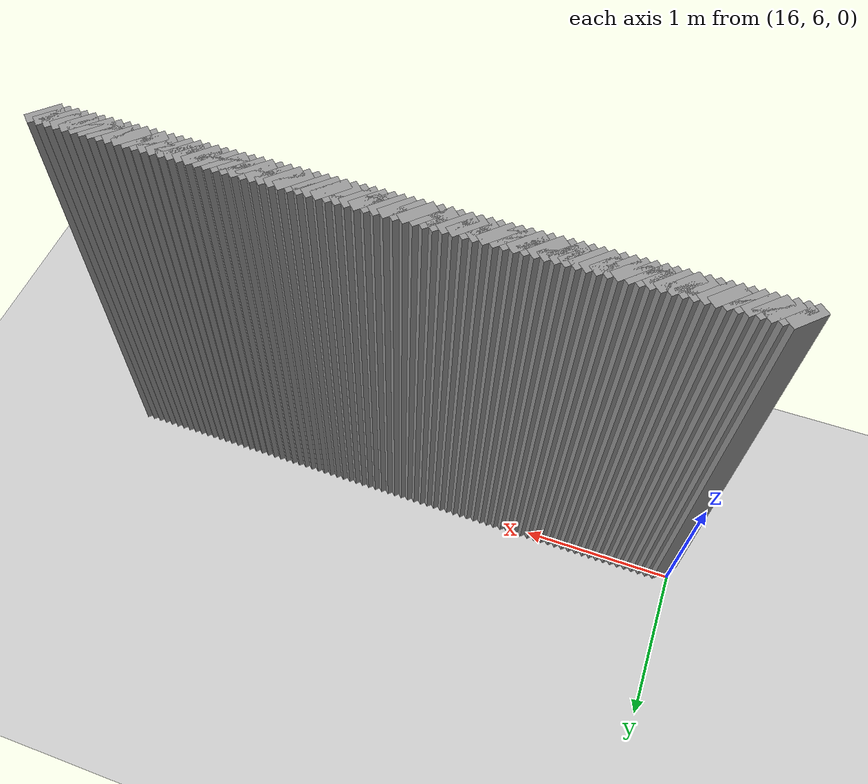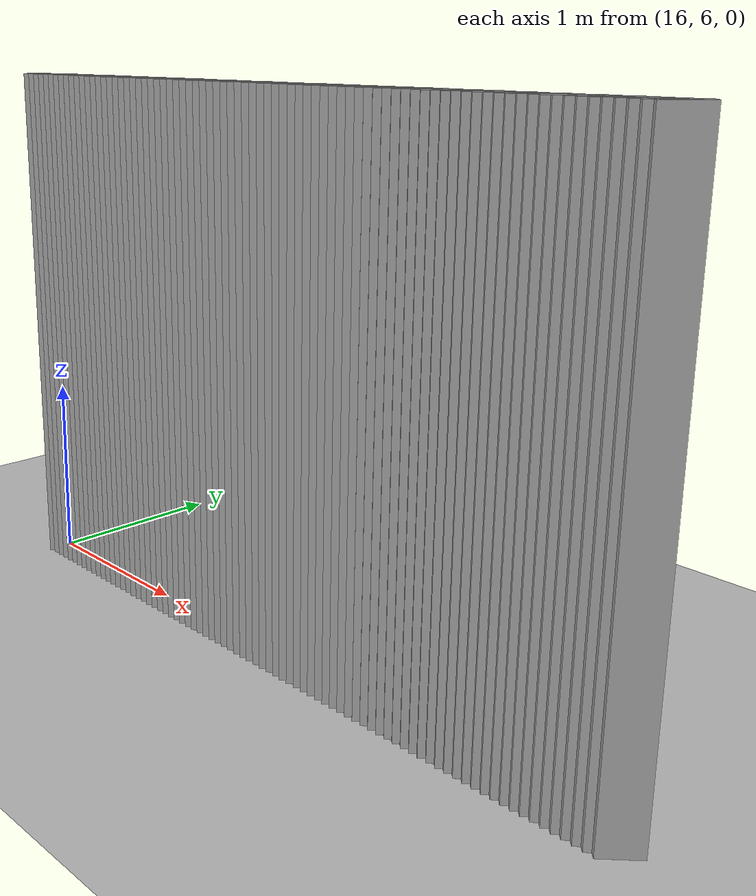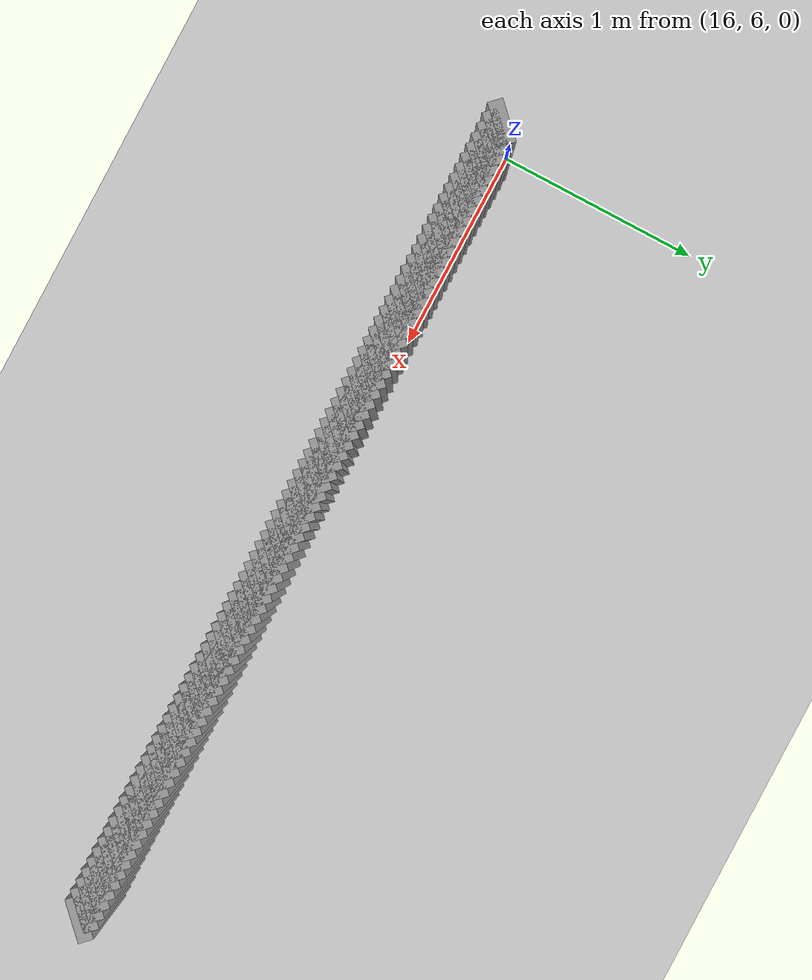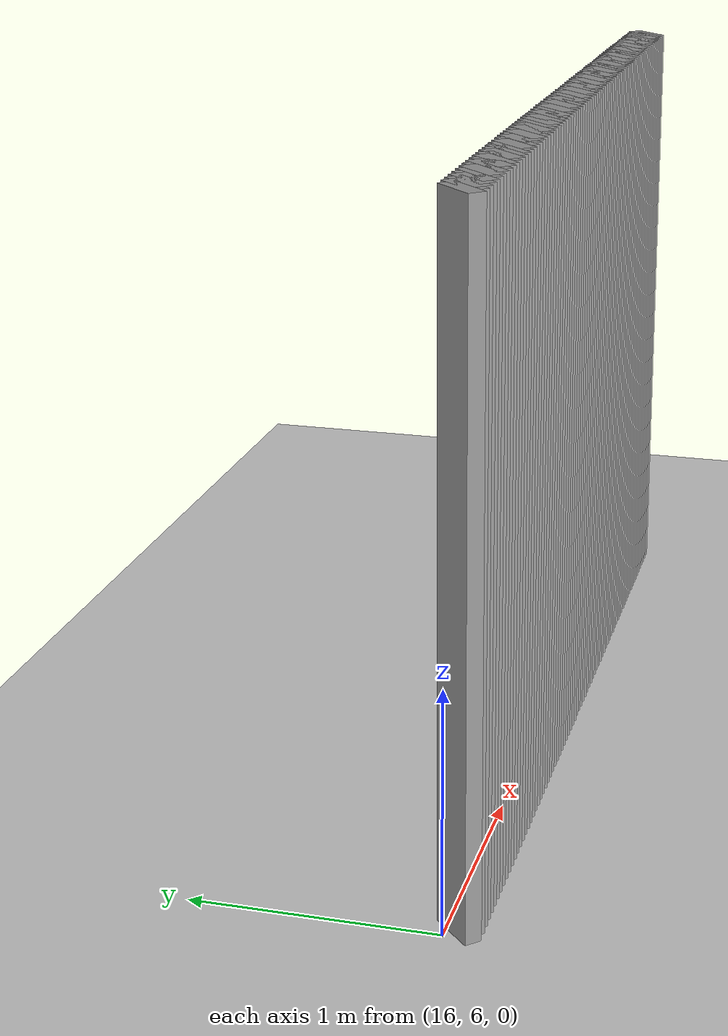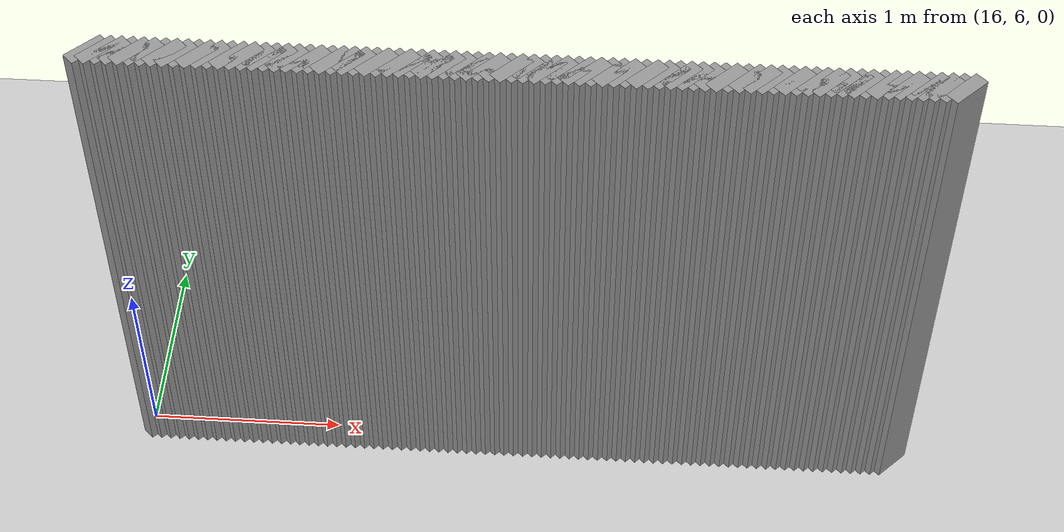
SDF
<sdf version="1.5">
 <world name="default">
  <include><uri>model://ground_plane</uri></include>
  <include><uri>model://sun</uri></include>
  <model name="grey_wall_4648">
   <static>1</static>
   <link name="link">
    <pose>16.05 5.95  1.4 0 0 -0.785398163397</pose>
    <collision name="collision"><geometry><box><size>0.0707106781187 .2  2.8</size></box></geometry></collision>
    <visual name="visual">
     <cast_shadows>0</cast_shadows>
     <geometry><box><size>0.0707106781187 .2  2.8</size></box></geometry>
     <material>
      <script>
       <uri>model://grey_wall/materials/scripts</uri>
       <uri>model://grey_wall/materials/textures</uri>
       <name>vrc/grey_wall</name>
      </script>
     </material>
    </visual>
   </link>
  </model>
  <model name="grey_wall_4649">
   <static>1</static>
   <link name="link">
    <pose>16.1 5.95  1.4 0 0 -0.785398163397</pose>
    <collision name="collision"><geometry><box><size>0.0707106781187 .2  2.8</size></box></geometry></collision>
    <visual name="visual">
     <cast_shadows>0</cast_shadows>
     <geometry><box><size>0.0707106781187 .2  2.8</size></box></geometry>
     <material>
      <script>
       <uri>model://grey_wall/materials/scripts</uri>
       <uri>model://grey_wall/materials/textures</uri>
       <name>vrc/grey_wall</name>
      </script>
     </material>
    </visual>
   </link>
  </model>
  <model name="grey_wall_4650">
   <static>1</static>
   <link name="link">
    <pose>16.15 5.95  1.4 0 0 -0.785398163397</pose>
    <collision name="collision"><geometry><box><size>0.0707106781187 .2  2.8</size></box></geometry></collision>
    <visual name="visual">
     <cast_shadows>0</cast_shadows>
     <geometry><box><size>0.0707106781187 .2  2.8</size></box></geometry>
     <material>
      <script>
       <uri>model://grey_wall/materials/scripts</uri>
       <uri>model://grey_wall/materials/textures</uri>
       <name>vrc/grey_wall</name>
      </script>
     </material>
    </visual>
   </link>
  </model>
  <model name="grey_wall_4651">
   <static>1</static>
   <link name="link">
    <pose>16.2 5.95  1.4 0 0 -0.785398163397</pose>
    <collision name="collision"><geometry><box><size>0.0707106781187 .2  2.8</size></box></geometry></collision>
    <visual name="visual">
     <cast_shadows>0</cast_shadows>
     <geometry><box><size>0.0707106781187 .2  2.8</size></box></geometry>
     <material>
      <script>
       <uri>model://grey_wall/materials/scripts</uri>
       <uri>model://grey_wall/materials/textures</uri>
       <name>vrc/grey_wall</name>
      </script>
     </material>
    </visual>
   </link>
  </model>
  <model name="grey_wall_4652">
   <static>1</static>
   <link name="link">
    <pose>16.25 5.95  1.4 0 0 -0.785398163397</pose>
    <collision name="collision"><geometry><box><size>0.0707106781187 .2  2.8</size></box></geometry></collision>
    <visual name="visual">
     <cast_shadows>0</cast_shadows>
     <geometry><box><size>0.0707106781187 .2  2.8</size></box></geometry>
     <material>
      <script>
       <uri>model://grey_wall/materials/scripts</uri>
       <uri>model://grey_wall/materials/textures</uri>
       <name>vrc/grey_wall</name>
      </script>
     </material>
    </visual>
   </link>
  </model>
  <model name="grey_wall_4653">
   <static>1</static>
   <link name="link">
    <pose>16.3 5.95  1.4 0 0 -0.785398163397</pose>
    <collision name="collision"><geometry><box><size>0.0707106781187 .2  2.8</size></box></geometry></collision>
    <visual name="visual">
     <cast_shadows>0</cast_shadows>
     <geometry><box><size>0.0707106781187 .2  2.8</size></box></geometry>
     <material>
      <script>
       <uri>model://grey_wall/materials/scripts</uri>
       <uri>model://grey_wall/materials/textures</uri>
       <name>vrc/grey_wall</name>
      </script>
     </material>
    </visual>
   </link>
  </model>
  <model name="grey_wall_4654">
   <static>1</static>
   <link name="link">
    <pose>16.35 5.95  1.4 0 0 -0.785398163397</pose>
    <collision name="collision"><geometry><box><size>0.0707106781187 .2  2.8</size></box></geometry></collision>
    <visual name="visual">
     <cast_shadows>0</cast_shadows>
     <geometry><box><size>0.0707106781187 .2  2.8</size></box></geometry>
     <material>
      <script>
       <uri>model://grey_wall/materials/scripts</uri>
       <uri>model://grey_wall/materials/textures</uri>
       <name>vrc/grey_wall</name>
      </script>
     </material>
    </visual>
   </link>
  </model>
  <model name="grey_wall_4655">
   <static>1</static>
   <link name="link">
    <pose>16.4 5.95  1.4 0 0 -0.785398163397</pose>
    <collision name="collision"><geometry><box><size>0.0707106781187 .2  2.8</size></box></geometry></collision>
    <visual name="visual">
     <cast_shadows>0</cast_shadows>
     <geometry><box><size>0.0707106781187 .2  2.8</size></box></geometry>
     <material>
      <script>
       <uri>model://grey_wall/materials/scripts</uri>
       <uri>model://grey_wall/materials/textures</uri>
       <name>vrc/grey_wall</name>
      </script>
     </material>
    </visual>
   </link>
  </model>
  <model name="grey_wall_4656">
   <static>1</static>
   <link name="link">
    <pose>16.45 5.95  1.4 0 0 -0.785398163397</pose>
    <collision name="collision"><geometry><box><size>0.0707106781187 .2  2.8</size></box></geometry></collision>
    <visual name="visual">
     <cast_shadows>0</cast_shadows>
     <geometry><box><size>0.0707106781187 .2  2.8</size></box></geometry>
     <material>
      <script>
       <uri>model://grey_wall/materials/scripts</uri>
       <uri>model://grey_wall/materials/textures</uri>
       <name>vrc/grey_wall</name>
      </script>
     </material>
    </visual>
   </link>
  </model>
  <model name="grey_wall_4657">
   <static>1</static>
   <link name="link">
    <pose>16.5 5.95  1.4 0 0 -0.785398163397</pose>
    <collision name="collision"><geometry><box><size>0.0707106781187 .2  2.8</size></box></geometry></collision>
    <visual name="visual">
     <cast_shadows>0</cast_shadows>
     <geometry><box><size>0.0707106781187 .2  2.8</size></box></geometry>
     <material>
      <script>
       <uri>model://grey_wall/materials/scripts</uri>
       <uri>model://grey_wall/materials/textures</uri>
       <name>vrc/grey_wall</name>
      </script>
     </material>
    </visual>
   </link>
  </model>
  <model name="grey_wall_4658">
   <static>1</static>
   <link name="link">
    <pose>16.55 5.95  1.4 0 0 -0.785398163397</pose>
    <collision name="collision"><geometry><box><size>0.0707106781187 .2  2.8</size></box></geometry></collision>
    <visual name="visual">
     <cast_shadows>0</cast_shadows>
     <geometry><box><size>0.0707106781187 .2  2.8</size></box></geometry>
     <material>
      <script>
       <uri>model://grey_wall/materials/scripts</uri>
       <uri>model://grey_wall/materials/textures</uri>
       <name>vrc/grey_wall</name>
      </script>
     </material>
    </visual>
   </link>
  </model>
  <model name="grey_wall_4659">
   <static>1</static>
   <link name="link">
    <pose>16.6 5.95  1.4 0 0 -0.785398163397</pose>
    <collision name="collision"><geometry><box><size>0.0707106781187 .2  2.8</size></box></geometry></collision>
    <visual name="visual">
     <cast_shadows>0</cast_shadows>
     <geometry><box><size>0.0707106781187 .2  2.8</size></box></geometry>
     <material>
      <script>
       <uri>model://grey_wall/materials/scripts</uri>
       <uri>model://grey_wall/materials/textures</uri>
       <name>vrc/grey_wall</name>
      </script>
     </material>
    </visual>
   </link>
  </model>
  <model name="grey_wall_4660">
   <static>1</static>
   <link name="link">
    <pose>16.65 5.95  1.4 0 0 -0.785398163397</pose>
    <collision name="collision"><geometry><box><size>0.0707106781187 .2  2.8</size></box></geometry></collision>
    <visual name="visual">
     <cast_shadows>0</cast_shadows>
     <geometry><box><size>0.0707106781187 .2  2.8</size></box></geometry>
     <material>
      <script>
       <uri>model://grey_wall/materials/scripts</uri>
       <uri>model://grey_wall/materials/textures</uri>
       <name>vrc/grey_wall</name>
      </script>
     </material>
    </visual>
   </link>
  </model>
  <model name="grey_wall_4661">
   <static>1</static>
   <link name="link">
    <pose>16.7 5.95  1.4 0 0 -0.785398163397</pose>
    <collision name="collision"><geometry><box><size>0.0707106781187 .2  2.8</size></box></geometry></collision>
    <visual name="visual">
     <cast_shadows>0</cast_shadows>
     <geometry><box><size>0.0707106781187 .2  2.8</size></box></geometry>
     <material>
      <script>
       <uri>model://grey_wall/materials/scripts</uri>
       <uri>model://grey_wall/materials/textures</uri>
       <name>vrc/grey_wall</name>
      </script>
     </material>
    </visual>
   </link>
  </model>
  <model name="grey_wall_4662">
   <static>1</static>
   <link name="link">
    <pose>16.75 5.95  1.4 0 0 -0.785398163397</pose>
    <collision name="collision"><geometry><box><size>0.0707106781187 .2  2.8</size></box></geometry></collision>
    <visual name="visual">
     <cast_shadows>0</cast_shadows>
     <geometry><box><size>0.0707106781187 .2  2.8</size></box></geometry>
     <material>
      <script>
       <uri>model://grey_wall/materials/scripts</uri>
       <uri>model://grey_wall/materials/textures</uri>
       <name>vrc/grey_wall</name>
      </script>
     </material>
    </visual>
   </link>
  </model>
  <model name="grey_wall_4663">
   <static>1</static>
   <link name="link">
    <pose>16.8 5.95  1.4 0 0 -0.785398163397</pose>
    <collision name="collision"><geometry><box><size>0.0707106781187 .2  2.8</size></box></geometry></collision>
    <visual name="visual">
     <cast_shadows>0</cast_shadows>
     <geometry><box><size>0.0707106781187 .2  2.8</size></box></geometry>
     <material>
      <script>
       <uri>model://grey_wall/materials/scripts</uri>
       <uri>model://grey_wall/materials/textures</uri>
       <name>vrc/grey_wall</name>
      </script>
     </material>
    </visual>
   </link>
  </model>
  <model name="grey_wall_4664">
   <static>1</static>
   <link name="link">
    <pose>16.85 5.95  1.4 0 0 -0.785398163397</pose>
    <collision name="collision"><geometry><box><size>0.0707106781187 .2  2.8</size></box></geometry></collision>
    <visual name="visual">
     <cast_shadows>0</cast_shadows>
     <geometry><box><size>0.0707106781187 .2  2.8</size></box></geometry>
     <material>
      <script>
       <uri>model://grey_wall/materials/scripts</uri>
       <uri>model://grey_wall/materials/textures</uri>
       <name>vrc/grey_wall</name>
      </script>
     </material>
    </visual>
   </link>
  </model>
  <model name="grey_wall_4665">
   <static>1</static>
   <link name="link">
    <pose>16.9 5.95  1.4 0 0 -0.785398163397</pose>
    <collision name="collision"><geometry><box><size>0.0707106781187 .2  2.8</size></box></geometry></collision>
    <visual name="visual">
     <cast_shadows>0</cast_shadows>
     <geometry><box><size>0.0707106781187 .2  2.8</size></box></geometry>
     <material>
      <script>
       <uri>model://grey_wall/materials/scripts</uri>
       <uri>model://grey_wall/materials/textures</uri>
       <name>vrc/grey_wall</name>
      </script>
     </material>
    </visual>
   </link>
  </model>
  <model name="grey_wall_4666">
   <static>1</static>
   <link name="link">
    <pose>16.95 5.95  1.4 0 0 -0.785398163397</pose>
    <collision name="collision"><geometry><box><size>0.0707106781187 .2  2.8</size></box></geometry></collision>
    <visual name="visual">
     <cast_shadows>0</cast_shadows>
     <geometry><box><size>0.0707106781187 .2  2.8</size></box></geometry>
     <material>
      <script>
       <uri>model://grey_wall/materials/scripts</uri>
       <uri>model://grey_wall/materials/textures</uri>
       <name>vrc/grey_wall</name>
      </script>
     </material>
    </visual>
   </link>
  </model>
  <model name="grey_wall_4667">
   <static>1</static>
   <link name="link">
    <pose>17.0 5.95  1.4 0 0 -0.785398163397</pose>
    <collision name="collision"><geometry><box><size>0.0707106781187 .2  2.8</size></box></geometry></collision>
    <visual name="visual">
     <cast_shadows>0</cast_shadows>
     <geometry><box><size>0.0707106781187 .2  2.8</size></box></geometry>
     <material>
      <script>
       <uri>model://grey_wall/materials/scripts</uri>
       <uri>model://grey_wall/materials/textures</uri>
       <name>vrc/grey_wall</name>
      </script>
     </material>
    </visual>
   </link>
  </model>
  <model name="grey_wall_4668">
   <static>1</static>
   <link name="link">
    <pose>17.05 5.95  1.4 0 0 -0.785398163397</pose>
    <collision name="collision"><geometry><box><size>0.0707106781187 .2  2.8</size></box></geometry></collision>
    <visual name="visual">
     <cast_shadows>0</cast_shadows>
     <geometry><box><size>0.0707106781187 .2  2.8</size></box></geometry>
     <material>
      <script>
       <uri>model://grey_wall/materials/scripts</uri>
       <uri>model://grey_wall/materials/textures</uri>
       <name>vrc/grey_wall</name>
      </script>
     </material>
    </visual>
   </link>
  </model>
  <model name="grey_wall_4669">
   <static>1</static>
   <link name="link">
    <pose>17.1 5.95  1.4 0 0 -0.785398163397</pose>
    <collision name="collision"><geometry><box><size>0.0707106781187 .2  2.8</size></box></geometry></collision>
    <visual name="visual">
     <cast_shadows>0</cast_shadows>
     <geometry><box><size>0.0707106781187 .2  2.8</size></box></geometry>
     <material>
      <script>
       <uri>model://grey_wall/materials/scripts</uri>
       <uri>model://grey_wall/materials/textures</uri>
       <name>vrc/grey_wall</name>
      </script>
     </material>
    </visual>
   </link>
  </model>
  <model name="grey_wall_4670">
   <static>1</static>
   <link name="link">
    <pose>17.15 5.95  1.4 0 0 -0.785398163397</pose>
    <collision name="collision"><geometry><box><size>0.0707106781187 .2  2.8</size></box></geometry></collision>
    <visual name="visual">
     <cast_shadows>0</cast_shadows>
     <geometry><box><size>0.0707106781187 .2  2.8</size></box></geometry>
     <material>
      <script>
       <uri>model://grey_wall/materials/scripts</uri>
       <uri>model://grey_wall/materials/textures</uri>
       <name>vrc/grey_wall</name>
      </script>
     </material>
    </visual>
   </link>
  </model>
  <model name="grey_wall_4671">
   <static>1</static>
   <link name="link">
    <pose>17.2 5.95  1.4 0 0 -0.785398163397</pose>
    <collision name="collision"><geometry><box><size>0.0707106781187 .2  2.8</size></box></geometry></collision>
    <visual name="visual">
     <cast_shadows>0</cast_shadows>
     <geometry><box><size>0.0707106781187 .2  2.8</size></box></geometry>
     <material>
      <script>
       <uri>model://grey_wall/materials/scripts</uri>
       <uri>model://grey_wall/materials/textures</uri>
       <name>vrc/grey_wall</name>
      </script>
     </material>
    </visual>
   </link>
  </model>
  <model name="grey_wall_4672">
   <static>1</static>
   <link name="link">
    <pose>17.25 5.95  1.4 0 0 -0.785398163397</pose>
    <collision name="collision"><geometry><box><size>0.0707106781187 .2  2.8</size></box></geometry></collision>
    <visual name="visual">
     <cast_shadows>0</cast_shadows>
     <geometry><box><size>0.0707106781187 .2  2.8</size></box></geometry>
     <material>
      <script>
       <uri>model://grey_wall/materials/scripts</uri>
       <uri>model://grey_wall/materials/textures</uri>
       <name>vrc/grey_wall</name>
      </script>
     </material>
    </visual>
   </link>
  </model>
  <model name="grey_wall_4673">
   <static>1</static>
   <link name="link">
    <pose>17.3 5.95  1.4 0 0 -0.785398163397</pose>
    <collision name="collision"><geometry><box><size>0.0707106781187 .2  2.8</size></box></geometry></collision>
    <visual name="visual">
     <cast_shadows>0</cast_shadows>
     <geometry><box><size>0.0707106781187 .2  2.8</size></box></geometry>
     <material>
      <script>
       <uri>model://grey_wall/materials/scripts</uri>
       <uri>model://grey_wall/materials/textures</uri>
       <name>vrc/grey_wall</name>
      </script>
     </material>
    </visual>
   </link>
  </model>
  <model name="grey_wall_4674">
   <static>1</static>
   <link name="link">
    <pose>17.35 5.95  1.4 0 0 -0.785398163397</pose>
    <collision name="collision"><geometry><box><size>0.0707106781187 .2  2.8</size></box></geometry></collision>
    <visual name="visual">
     <cast_shadows>0</cast_shadows>
     <geometry><box><size>0.0707106781187 .2  2.8</size></box></geometry>
     <material>
      <script>
       <uri>model://grey_wall/materials/scripts</uri>
       <uri>model://grey_wall/materials/textures</uri>
       <name>vrc/grey_wall</name>
      </script>
     </material>
    </visual>
   </link>
  </model>
  <model name="grey_wall_4675">
   <static>1</static>
   <link name="link">
    <pose>17.4 5.95  1.4 0 0 -0.785398163397</pose>
    <collision name="collision"><geometry><box><size>0.0707106781187 .2  2.8</size></box></geometry></collision>
    <visual name="visual">
     <cast_shadows>0</cast_shadows>
     <geometry><box><size>0.0707106781187 .2  2.8</size></box></geometry>
     <material>
      <script>
       <uri>model://grey_wall/materials/scripts</uri>
       <uri>model://grey_wall/materials/textures</uri>
       <name>vrc/grey_wall</name>
      </script>
     </material>
    </visual>
   </link>
  </model>
  <model name="grey_wall_4676">
   <static>1</static>
   <link name="link">
    <pose>17.45 5.95  1.4 0 0 -0.785398163397</pose>
    <collision name="collision"><geometry><box><size>0.0707106781187 .2  2.8</size></box></geometry></collision>
    <visual name="visual">
     <cast_shadows>0</cast_shadows>
     <geometry><box><size>0.0707106781187 .2  2.8</size></box></geometry>
     <material>
      <script>
       <uri>model://grey_wall/materials/scripts</uri>
       <uri>model://grey_wall/materials/textures</uri>
       <name>vrc/grey_wall</name>
      </script>
     </material>
    </visual>
   </link>
  </model>
  <model name="grey_wall_4677">
   <static>1</static>
   <link name="link">
    <pose>17.5 5.95  1.4 0 0 -0.785398163397</pose>
    <collision name="collision"><geometry><box><size>0.0707106781187 .2  2.8</size></box></geometry></collision>
    <visual name="visual">
     <cast_shadows>0</cast_shadows>
     <geometry><box><size>0.0707106781187 .2  2.8</size></box></geometry>
     <material>
      <script>
       <uri>model://grey_wall/materials/scripts</uri>
       <uri>model://grey_wall/materials/textures</uri>
       <name>vrc/grey_wall</name>
      </script>
     </material>
    </visual>
   </link>
  </model>
  <model name="grey_wall_4678">
   <static>1</static>
   <link name="link">
    <pose>17.55 5.95  1.4 0 0 -0.785398163397</pose>
    <collision name="collision"><geometry><box><size>0.0707106781187 .2  2.8</size></box></geometry></collision>
    <visual name="visual">
     <cast_shadows>0</cast_shadows>
     <geometry><box><size>0.0707106781187 .2  2.8</size></box></geometry>
     <material>
      <script>
       <uri>model://grey_wall/materials/scripts</uri>
       <uri>model://grey_wall/materials/textures</uri>
       <name>vrc/grey_wall</name>
      </script>
     </material>
    </visual>
   </link>
  </model>
  <model name="grey_wall_4679">
   <static>1</static>
   <link name="link">
    <pose>17.6 5.95  1.4 0 0 -0.785398163397</pose>
    <collision name="collision"><geometry><box><size>0.0707106781187 .2  2.8</size></box></geometry></collision>
    <visual name="visual">
     <cast_shadows>0</cast_shadows>
     <geometry><box><size>0.0707106781187 .2  2.8</size></box></geometry>
     <material>
      <script>
       <uri>model://grey_wall/materials/scripts</uri>
       <uri>model://grey_wall/materials/textures</uri>
       <name>vrc/grey_wall</name>
      </script>
     </material>
    </visual>
   </link>
  </model>
  <model name="grey_wall_4680">
   <static>1</static>
   <link name="link">
    <pose>17.65 5.95  1.4 0 0 -0.785398163397</pose>
    <collision name="collision"><geometry><box><size>0.0707106781187 .2  2.8</size></box></geometry></collision>
    <visual name="visual">
     <cast_shadows>0</cast_shadows>
     <geometry><box><size>0.0707106781187 .2  2.8</size></box></geometry>
     <material>
      <script>
       <uri>model://grey_wall/materials/scripts</uri>
       <uri>model://grey_wall/materials/textures</uri>
       <name>vrc/grey_wall</name>
      </script>
     </material>
    </visual>
   </link>
  </model>
  <model name="grey_wall_4681">
   <static>1</static>
   <link name="link">
    <pose>17.7 5.95  1.4 0 0 -0.785398163397</pose>
    <collision name="collision"><geometry><box><size>0.0707106781187 .2  2.8</size></box></geometry></collision>
    <visual name="visual">
     <cast_shadows>0</cast_shadows>
     <geometry><box><size>0.0707106781187 .2  2.8</size></box></geometry>
     <material>
      <script>
       <uri>model://grey_wall/materials/scripts</uri>
       <uri>model://grey_wall/materials/textures</uri>
       <name>vrc/grey_wall</name>
      </script>
     </material>
    </visual>
   </link>
  </model>
  <model name="grey_wall_4682">
   <static>1</static>
   <link name="link">
    <pose>17.75 5.95  1.4 0 0 -0.785398163397</pose>
    <collision name="collision"><geometry><box><size>0.0707106781187 .2  2.8</size></box></geometry></collision>
    <visual name="visual">
     <cast_shadows>0</cast_shadows>
     <geometry><box><size>0.0707106781187 .2  2.8</size></box></geometry>
     <material>
      <script>
       <uri>model://grey_wall/materials/scripts</uri>
       <uri>model://grey_wall/materials/textures</uri>
       <name>vrc/grey_wall</name>
      </script>
     </material>
    </visual>
   </link>
  </model>
  <model name="grey_wall_4683">
   <static>1</static>
   <link name="link">
    <pose>17.8 5.95  1.4 0 0 -0.785398163397</pose>
    <collision name="collision"><geometry><box><size>0.0707106781187 .2  2.8</size></box></geometry></collision>
    <visual name="visual">
     <cast_shadows>0</cast_shadows>
     <geometry><box><size>0.0707106781187 .2  2.8</size></box></geometry>
     <material>
      <script>
       <uri>model://grey_wall/materials/scripts</uri>
       <uri>model://grey_wall/materials/textures</uri>
       <name>vrc/grey_wall</name>
      </script>
     </material>
    </visual>
   </link>
  </model>
  <model name="grey_wall_4684">
   <static>1</static>
   <link name="link">
    <pose>17.85 5.95  1.4 0 0 -0.785398163397</pose>
    <collision name="collision"><geometry><box><size>0.0707106781187 .2  2.8</size></box></geometry></collision>
    <visual name="visual">
     <cast_shadows>0</cast_shadows>
     <geometry><box><size>0.0707106781187 .2  2.8</size></box></geometry>
     <material>
      <script>
       <uri>model://grey_wall/materials/scripts</uri>
       <uri>model://grey_wall/materials/textures</uri>
       <name>vrc/grey_wall</name>
      </script>
     </material>
    </visual>
   </link>
  </model>
  <model name="grey_wall_4685">
   <static>1</static>
   <link name="link">
    <pose>17.9 5.95  1.4 0 0 -0.785398163397</pose>
    <collision name="collision"><geometry><box><size>0.0707106781187 .2  2.8</size></box></geometry></collision>
    <visual name="visual">
     <cast_shadows>0</cast_shadows>
     <geometry><box><size>0.0707106781187 .2  2.8</size></box></geometry>
     <material>
      <script>
       <uri>model://grey_wall/materials/scripts</uri>
       <uri>model://grey_wall/materials/textures</uri>
       <name>vrc/grey_wall</name>
      </script>
     </material>
    </visual>
   </link>
  </model>
  <model name="grey_wall_4686">
   <static>1</static>
   <link name="link">
    <pose>17.95 5.95  1.4 0 0 -0.785398163397</pose>
    <collision name="collision"><geometry><box><size>0.0707106781187 .2  2.8</size></box></geometry></collision>
    <visual name="visual">
     <cast_shadows>0</cast_shadows>
     <geometry><box><size>0.0707106781187 .2  2.8</size></box></geometry>
     <material>
      <script>
       <uri>model://grey_wall/materials/scripts</uri>
       <uri>model://grey_wall/materials/textures</uri>
       <name>vrc/grey_wall</name>
      </script>
     </material>
    </visual>
   </link>
  </model>
  <model name="grey_wall_4687">
   <static>1</static>
   <link name="link">
    <pose>18.0 5.95  1.4 0 0 -0.785398163397</pose>
    <collision name="collision"><geometry><box><size>0.0707106781187 .2  2.8</size></box></geometry></collision>
    <visual name="visual">
     <cast_shadows>0</cast_shadows>
     <geometry><box><size>0.0707106781187 .2  2.8</size></box></geometry>
     <material>
      <script>
       <uri>model://grey_wall/materials/scripts</uri>
       <uri>model://grey_wall/materials/textures</uri>
       <name>vrc/grey_wall</name>
      </script>
     </material>
    </visual>
   </link>
  </model>
  <model name="grey_wall_4688">
   <static>1</static>
   <link name="link">
    <pose>18.05 5.95  1.4 0 0 -0.785398163397</pose>
    <collision name="collision"><geometry><box><size>0.0707106781187 .2  2.8</size></box></geometry></collision>
    <visual name="visual">
     <cast_shadows>0</cast_shadows>
     <geometry><box><size>0.0707106781187 .2  2.8</size></box></geometry>
     <material>
      <script>
       <uri>model://grey_wall/materials/scripts</uri>
       <uri>model://grey_wall/materials/textures</uri>
       <name>vrc/grey_wall</name>
      </script>
     </material>
    </visual>
   </link>
  </model>
  <model name="grey_wall_4689">
   <static>1</static>
   <link name="link">
    <pose>18.1 5.95  1.4 0 0 -0.785398163397</pose>
    <collision name="collision"><geometry><box><size>0.0707106781187 .2  2.8</size></box></geometry></collision>
    <visual name="visual">
     <cast_shadows>0</cast_shadows>
     <geometry><box><size>0.0707106781187 .2  2.8</size></box></geometry>
     <material>
      <script>
       <uri>model://grey_wall/materials/scripts</uri>
       <uri>model://grey_wall/materials/textures</uri>
       <name>vrc/grey_wall</name>
      </script>
     </material>
    </visual>
   </link>
  </model>
  <model name="grey_wall_4690">
   <static>1</static>
   <link name="link">
    <pose>18.15 5.95  1.4 0 0 -0.785398163397</pose>
    <collision name="collision"><geometry><box><size>0.0707106781187 .2  2.8</size></box></geometry></collision>
    <visual name="visual">
     <cast_shadows>0</cast_shadows>
     <geometry><box><size>0.0707106781187 .2  2.8</size></box></geometry>
     <material>
      <script>
       <uri>model://grey_wall/materials/scripts</uri>
       <uri>model://grey_wall/materials/textures</uri>
       <name>vrc/grey_wall</name>
      </script>
     </material>
    </visual>
   </link>
  </model>
  <model name="grey_wall_4691">
   <static>1</static>
   <link name="link">
    <pose>18.2 5.95  1.4 0 0 -0.785398163397</pose>
    <collision name="collision"><geometry><box><size>0.0707106781187 .2  2.8</size></box></geometry></collision>
    <visual name="visual">
     <cast_shadows>0</cast_shadows>
     <geometry><box><size>0.0707106781187 .2  2.8</size></box></geometry>
     <material>
      <script>
       <uri>model://grey_wall/materials/scripts</uri>
       <uri>model://grey_wall/materials/textures</uri>
       <name>vrc/grey_wall</name>
      </script>
     </material>
    </visual>
   </link>
  </model>
  <model name="grey_wall_4692">
   <static>1</static>
   <link name="link">
    <pose>18.25 5.95  1.4 0 0 -0.785398163397</pose>
    <collision name="collision"><geometry><box><size>0.0707106781187 .2  2.8</size></box></geometry></collision>
    <visual name="visual">
     <cast_shadows>0</cast_shadows>
     <geometry><box><size>0.0707106781187 .2  2.8</size></box></geometry>
     <material>
      <script>
       <uri>model://grey_wall/materials/scripts</uri>
       <uri>model://grey_wall/materials/textures</uri>
       <name>vrc/grey_wall</name>
      </script>
     </material>
    </visual>
   </link>
  </model>
  <model name="grey_wall_4693">
   <static>1</static>
   <link name="link">
    <pose>18.3 5.95  1.4 0 0 -0.785398163397</pose>
    <collision name="collision"><geometry><box><size>0.0707106781187 .2  2.8</size></box></geometry></collision>
    <visual name="visual">
     <cast_shadows>0</cast_shadows>
     <geometry><box><size>0.0707106781187 .2  2.8</size></box></geometry>
     <material>
      <script>
       <uri>model://grey_wall/materials/scripts</uri>
       <uri>model://grey_wall/materials/textures</uri>
       <name>vrc/grey_wall</name>
      </script>
     </material>
    </visual>
   </link>
  </model>
  <model name="grey_wall_4694">
   <static>1</static>
   <link name="link">
    <pose>18.35 5.95  1.4 0 0 -0.785398163397</pose>
    <collision name="collision"><geometry><box><size>0.0707106781187 .2  2.8</size></box></geometry></collision>
    <visual name="visual">
     <cast_shadows>0</cast_shadows>
     <geometry><box><size>0.0707106781187 .2  2.8</size></box></geometry>
     <material>
      <script>
       <uri>model://grey_wall/materials/scripts</uri>
       <uri>model://grey_wall/materials/textures</uri>
       <name>vrc/grey_wall</name>
      </script>
     </material>
    </visual>
   </link>
  </model>
  <model name="grey_wall_4695">
   <static>1</static>
   <link name="link">
    <pose>18.4 5.95  1.4 0 0 -0.785398163397</pose>
    <collision name="collision"><geometry><box><size>0.0707106781187 .2  2.8</size></box></geometry></collision>
    <visual name="visual">
     <cast_shadows>0</cast_shadows>
     <geometry><box><size>0.0707106781187 .2  2.8</size></box></geometry>
     <material>
      <script>
       <uri>model://grey_wall/materials/scripts</uri>
       <uri>model://grey_wall/materials/textures</uri>
       <name>vrc/grey_wall</name>
      </script>
     </material>
    </visual>
   </link>
  </model>
  <model name="grey_wall_4696">
   <static>1</static>
   <link name="link">
    <pose>18.45 5.95  1.4 0 0 -0.785398163397</pose>
    <collision name="collision"><geometry><box><size>0.0707106781187 .2  2.8</size></box></geometry></collision>
    <visual name="visual">
     <cast_shadows>0</cast_shadows>
     <geometry><box><size>0.0707106781187 .2  2.8</size></box></geometry>
     <material>
      <script>
       <uri>model://grey_wall/materials/scripts</uri>
       <uri>model://grey_wall/materials/textures</uri>
       <name>vrc/grey_wall</name>
      </script>
     </material>
    </visual>
   </link>
  </model>
  <model name="grey_wall_4697">
   <static>1</static>
   <link name="link">
    <pose>18.5 5.95  1.4 0 0 -0.785398163397</pose>
    <collision name="collision"><geometry><box><size>0.0707106781187 .2  2.8</size></box></geometry></collision>
    <visual name="visual">
     <cast_shadows>0</cast_shadows>
     <geometry><box><size>0.0707106781187 .2  2.8</size></box></geometry>
     <material>
      <script>
       <uri>model://grey_wall/materials/scripts</uri>
       <uri>model://grey_wall/materials/textures</uri>
       <name>vrc/grey_wall</name>
      </script>
     </material>
    </visual>
   </link>
  </model>
  <model name="grey_wall_4698">
   <static>1</static>
   <link name="link">
    <pose>18.55 5.95  1.4 0 0 -0.785398163397</pose>
    <collision name="collision"><geometry><box><size>0.0707106781187 .2  2.8</size></box></geometry></collision>
    <visual name="visual">
     <cast_shadows>0</cast_shadows>
     <geometry><box><size>0.0707106781187 .2  2.8</size></box></geometry>
     <material>
      <script>
       <uri>model://grey_wall/materials/scripts</uri>
       <uri>model://grey_wall/materials/textures</uri>
       <name>vrc/grey_wall</name>
      </script>
     </material>
    </visual>
   </link>
  </model>
  <model name="grey_wall_4699">
   <static>1</static>
   <link name="link">
    <pose>18.6 5.95  1.4 0 0 -0.785398163397</pose>
    <collision name="collision"><geometry><box><size>0.0707106781187 .2  2.8</size></box></geometry></collision>
    <visual name="visual">
     <cast_shadows>0</cast_shadows>
     <geometry><box><size>0.0707106781187 .2  2.8</size></box></geometry>
     <material>
      <script>
       <uri>model://grey_wall/materials/scripts</uri>
       <uri>model://grey_wall/materials/textures</uri>
       <name>vrc/grey_wall</name>
      </script>
     </material>
    </visual>
   </link>
  </model>
  <model name="grey_wall_4700">
   <static>1</static>
   <link name="link">
    <pose>18.65 5.95  1.4 0 0 -0.785398163397</pose>
    <collision name="collision"><geometry><box><size>0.0707106781187 .2  2.8</size></box></geometry></collision>
    <visual name="visual">
     <cast_shadows>0</cast_shadows>
     <geometry><box><size>0.0707106781187 .2  2.8</size></box></geometry>
     <material>
      <script>
       <uri>model://grey_wall/materials/scripts</uri>
       <uri>model://grey_wall/materials/textures</uri>
       <name>vrc/grey_wall</name>
      </script>
     </material>
    </visual>
   </link>
  </model>
  <model name="grey_wall_4701">
   <static>1</static>
   <link name="link">
    <pose>18.7 5.95  1.4 0 0 -0.785398163397</pose>
    <collision name="collision"><geometry><box><size>0.0707106781187 .2  2.8</size></box></geometry></collision>
    <visual name="visual">
     <cast_shadows>0</cast_shadows>
     <geometry><box><size>0.0707106781187 .2  2.8</size></box></geometry>
     <material>
      <script>
       <uri>model://grey_wall/materials/scripts</uri>
       <uri>model://grey_wall/materials/textures</uri>
       <name>vrc/grey_wall</name>
      </script>
     </material>
    </visual>
   </link>
  </model>
  <model name="grey_wall_4702">
   <static>1</static>
   <link name="link">
    <pose>18.75 5.95  1.4 0 0 -0.785398163397</pose>
    <collision name="collision"><geometry><box><size>0.0707106781187 .2  2.8</size></box></geometry></collision>
    <visual name="visual">
     <cast_shadows>0</cast_shadows>
     <geometry><box><size>0.0707106781187 .2  2.8</size></box></geometry>
     <material>
      <script>
       <uri>model://grey_wall/materials/scripts</uri>
       <uri>model://grey_wall/materials/textures</uri>
       <name>vrc/grey_wall</name>
      </script>
     </material>
    </visual>
   </link>
  </model>
  <model name="grey_wall_4703">
   <static>1</static>
   <link name="link">
    <pose>18.8 5.95  1.4 0 0 -0.785398163397</pose>
    <collision name="collision"><geometry><box><size>0.0707106781187 .2  2.8</size></box></geometry></collision>
    <visual name="visual">
     <cast_shadows>0</cast_shadows>
     <geometry><box><size>0.0707106781187 .2  2.8</size></box></geometry>
     <material>
      <script>
       <uri>model://grey_wall/materials/scripts</uri>
       <uri>model://grey_wall/materials/textures</uri>
       <name>vrc/grey_wall</name>
      </script>
     </material>
    </visual>
   </link>
  </model>
  <model name="grey_wall_4704">
   <static>1</static>
   <link name="link">
    <pose>18.85 5.95  1.4 0 0 -0.785398163397</pose>
    <collision name="collision"><geometry><box><size>0.0707106781187 .2  2.8</size></box></geometry></collision>
    <visual name="visual">
     <cast_shadows>0</cast_shadows>
     <geometry><box><size>0.0707106781187 .2  2.8</size></box></geometry>
     <material>
      <script>
       <uri>model://grey_wall/materials/scripts</uri>
       <uri>model://grey_wall/materials/textures</uri>
       <name>vrc/grey_wall</name>
      </script>
     </material>
    </visual>
   </link>
  </model>
  <model name="grey_wall_4705">
   <static>1</static>
   <link name="link">
    <pose>18.9 5.95  1.4 0 0 -0.785398163397</pose>
    <collision name="collision"><geometry><box><size>0.0707106781187 .2  2.8</size></box></geometry></collision>
    <visual name="visual">
     <cast_shadows>0</cast_shadows>
     <geometry><box><size>0.0707106781187 .2  2.8</size></box></geometry>
     <material>
      <script>
       <uri>model://grey_wall/materials/scripts</uri>
       <uri>model://grey_wall/materials/textures</uri>
       <name>vrc/grey_wall</name>
      </script>
     </material>
    </visual>
   </link>
  </model>
  <model name="grey_wall_4706">
   <static>1</static>
   <link name="link">
    <pose>18.95 5.95  1.4 0 0 -0.785398163397</pose>
    <collision name="collision"><geometry><box><size>0.0707106781187 .2  2.8</size></box></geometry></collision>
    <visual name="visual">
     <cast_shadows>0</cast_shadows>
     <geometry><box><size>0.0707106781187 .2  2.8</size></box></geometry>
     <material>
      <script>
       <uri>model://grey_wall/materials/scripts</uri>
       <uri>model://grey_wall/materials/textures</uri>
       <name>vrc/grey_wall</name>
      </script>
     </material>
    </visual>
   </link>
  </model>
  <model name="grey_wall_4707">
   <static>1</static>
   <link name="link">
    <pose>19.0 5.95  1.4 0 0 -0.785398163397</pose>
    <collision name="collision"><geometry><box><size>0.0707106781187 .2  2.8</size></box></geometry></collision>
    <visual name="visual">
     <cast_shadows>0</cast_shadows>
     <geometry><box><size>0.0707106781187 .2  2.8</size></box></geometry>
     <material>
      <script>
       <uri>model://grey_wall/materials/scripts</uri>
       <uri>model://grey_wall/materials/textures</uri>
       <name>vrc/grey_wall</name>
      </script>
     </material>
    </visual>
   </link>
  </model>
  <model name="grey_wall_4708">
   <static>1</static>
   <link name="link">
    <pose>19.05 5.95  1.4 0 0 -0.785398163397</pose>
    <collision name="collision"><geometry><box><size>0.0707106781187 .2  2.8</size></box></geometry></collision>
    <visual name="visual">
     <cast_shadows>0</cast_shadows>
     <geometry><box><size>0.0707106781187 .2  2.8</size></box></geometry>
     <material>
      <script>
       <uri>model://grey_wall/materials/scripts</uri>
       <uri>model://grey_wall/materials/textures</uri>
       <name>vrc/grey_wall</name>
      </script>
     </material>
    </visual>
   </link>
  </model>
  <model name="grey_wall_4709">
   <static>1</static>
   <link name="link">
    <pose>19.1 5.95  1.4 0 0 -0.785398163397</pose>
    <collision name="collision"><geometry><box><size>0.0707106781187 .2  2.8</size></box></geometry></collision>
    <visual name="visual">
     <cast_shadows>0</cast_shadows>
     <geometry><box><size>0.0707106781187 .2  2.8</size></box></geometry>
     <material>
      <script>
       <uri>model://grey_wall/materials/scripts</uri>
       <uri>model://grey_wall/materials/textures</uri>
       <name>vrc/grey_wall</name>
      </script>
     </material>
    </visual>
   </link>
  </model>
  <model name="grey_wall_4710">
   <static>1</static>
   <link name="link">
    <pose>19.15 5.95  1.4 0 0 -0.785398163397</pose>
    <collision name="collision"><geometry><box><size>0.0707106781187 .2  2.8</size></box></geometry></collision>
    <visual name="visual">
     <cast_shadows>0</cast_shadows>
     <geometry><box><size>0.0707106781187 .2  2.8</size></box></geometry>
     <material>
      <script>
       <uri>model://grey_wall/materials/scripts</uri>
       <uri>model://grey_wall/materials/textures</uri>
       <name>vrc/grey_wall</name>
      </script>
     </material>
    </visual>
   </link>
  </model>
  <model name="grey_wall_4711">
   <static>1</static>
   <link name="link">
    <pose>19.2 5.95  1.4 0 0 -0.785398163397</pose>
    <collision name="collision"><geometry><box><size>0.0707106781187 .2  2.8</size></box></geometry></collision>
    <visual name="visual">
     <cast_shadows>0</cast_shadows>
     <geometry><box><size>0.0707106781187 .2  2.8</size></box></geometry>
     <material>
      <script>
       <uri>model://grey_wall/materials/scripts</uri>
       <uri>model://grey_wall/materials/textures</uri>
       <name>vrc/grey_wall</name>
      </script>
     </material>
    </visual>
   </link>
  </model>
  <model name="grey_wall_4712">
   <static>1</static>
   <link name="link">
    <pose>19.25 5.95  1.4 0 0 -0.785398163397</pose>
    <collision name="collision"><geometry><box><size>0.0707106781187 .2  2.8</size></box></geometry></collision>
    <visual name="visual">
     <cast_shadows>0</cast_shadows>
     <geometry><box><size>0.0707106781187 .2  2.8</size></box></geometry>
     <material>
      <script>
       <uri>model://grey_wall/materials/scripts</uri>
       <uri>model://grey_wall/materials/textures</uri>
       <name>vrc/grey_wall</name>
      </script>
     </material>
    </visual>
   </link>
  </model>
  <model name="grey_wall_4713">
   <static>1</static>
   <link name="link">
    <pose>19.3 5.95  1.4 0 0 -0.785398163397</pose>
    <collision name="collision"><geometry><box><size>0.0707106781187 .2  2.8</size></box></geometry></collision>
    <visual name="visual">
     <cast_shadows>0</cast_shadows>
     <geometry><box><size>0.0707106781187 .2  2.8</size></box></geometry>
     <material>
      <script>
       <uri>model://grey_wall/materials/scripts</uri>
       <uri>model://grey_wall/materials/textures</uri>
       <name>vrc/grey_wall</name>
      </script>
     </material>
    </visual>
   </link>
  </model>
  <model name="grey_wall_4714">
   <static>1</static>
   <link name="link">
    <pose>19.35 5.95  1.4 0 0 -0.785398163397</pose>
    <collision name="collision"><geometry><box><size>0.0707106781187 .2  2.8</size></box></geometry></collision>
    <visual name="visual">
     <cast_shadows>0</cast_shadows>
     <geometry><box><size>0.0707106781187 .2  2.8</size></box></geometry>
     <material>
      <script>
       <uri>model://grey_wall/materials/scripts</uri>
       <uri>model://grey_wall/materials/textures</uri>
       <name>vrc/grey_wall</name>
      </script>
     </material>
    </visual>
   </link>
  </model>
  <model name="grey_wall_4715">
   <static>1</static>
   <link name="link">
    <pose>19.4 5.95  1.4 0 0 -0.785398163397</pose>
    <collision name="collision"><geometry><box><size>0.0707106781187 .2  2.8</size></box></geometry></collision>
    <visual name="visual">
     <cast_shadows>0</cast_shadows>
     <geometry><box><size>0.0707106781187 .2  2.8</size></box></geometry>
     <material>
      <script>
       <uri>model://grey_wall/materials/scripts</uri>
       <uri>model://grey_wall/materials/textures</uri>
       <name>vrc/grey_wall</name>
      </script>
     </material>
    </visual>
   </link>
  </model>
  <model name="grey_wall_4716">
   <static>1</static>
   <link name="link">
    <pose>19.45 5.95  1.4 0 0 -0.785398163397</pose>
    <collision name="collision"><geometry><box><size>0.0707106781187 .2  2.8</size></box></geometry></collision>
    <visual name="visual">
     <cast_shadows>0</cast_shadows>
     <geometry><box><size>0.0707106781187 .2  2.8</size></box></geometry>
     <material>
      <script>
       <uri>model://grey_wall/materials/scripts</uri>
       <uri>model://grey_wall/materials/textures</uri>
       <name>vrc/grey_wall</name>
      </script>
     </material>
    </visual>
   </link>
  </model>
  <model name="grey_wall_4717">
   <static>1</static>
   <link name="link">
    <pose>19.5 5.95  1.4 0 0 -0.785398163397</pose>
    <collision name="collision"><geometry><box><size>0.0707106781187 .2  2.8</size></box></geometry></collision>
    <visual name="visual">
     <cast_shadows>0</cast_shadows>
     <geometry><box><size>0.0707106781187 .2  2.8</size></box></geometry>
     <material>
      <script>
       <uri>model://grey_wall/materials/scripts</uri>
       <uri>model://grey_wall/materials/textures</uri>
       <name>vrc/grey_wall</name>
      </script>
     </material>
    </visual>
   </link>
  </model>
  <model name="grey_wall_4718">
   <static>1</static>
   <link name="link">
    <pose>19.55 5.95  1.4 0 0 -0.785398163397</pose>
    <collision name="collision"><geometry><box><size>0.0707106781187 .2  2.8</size></box></geometry></collision>
    <visual name="visual">
     <cast_shadows>0</cast_shadows>
     <geometry><box><size>0.0707106781187 .2  2.8</size></box></geometry>
     <material>
      <script>
       <uri>model://grey_wall/materials/scripts</uri>
       <uri>model://grey_wall/materials/textures</uri>
       <name>vrc/grey_wall</name>
      </script>
     </material>
    </visual>
   </link>
  </model>
  <model name="grey_wall_4719">
   <static>1</static>
   <link name="link">
    <pose>19.6 5.95  1.4 0 0 -0.785398163397</pose>
    <collision name="collision"><geometry><box><size>0.0707106781187 .2  2.8</size></box></geometry></collision>
    <visual name="visual">
     <cast_shadows>0</cast_shadows>
     <geometry><box><size>0.0707106781187 .2  2.8</size></box></geometry>
     <material>
      <script>
       <uri>model://grey_wall/materials/scripts</uri>
       <uri>model://grey_wall/materials/textures</uri>
       <name>vrc/grey_wall</name>
      </script>
     </material>
    </visual>
   </link>
  </model>
  <model name="grey_wall_4720">
   <static>1</static>
   <link name="link">
    <pose>19.65 5.95  1.4 0 0 -0.785398163397</pose>
    <collision name="collision"><geometry><box><size>0.0707106781187 .2  2.8</size></box></geometry></collision>
    <visual name="visual">
     <cast_shadows>0</cast_shadows>
     <geometry><box><size>0.0707106781187 .2  2.8</size></box></geometry>
     <material>
      <script>
       <uri>model://grey_wall/materials/scripts</uri>
       <uri>model://grey_wall/materials/textures</uri>
       <name>vrc/grey_wall</name>
      </script>
     </material>
    </visual>
   </link>
  </model>
  <model name="grey_wall_4721">
   <static>1</static>
   <link name="link">
    <pose>19.7 5.95  1.4 0 0 -0.785398163397</pose>
    <collision name="collision"><geometry><box><size>0.0707106781187 .2  2.8</size></box></geometry></collision>
    <visual name="visual">
     <cast_shadows>0</cast_shadows>
     <geometry><box><size>0.0707106781187 .2  2.8</size></box></geometry>
     <material>
      <script>
       <uri>model://grey_wall/materials/scripts</uri>
       <uri>model://grey_wall/materials/textures</uri>
       <name>vrc/grey_wall</name>
      </script>
     </material>
    </visual>
   </link>
  </model>
  <model name="grey_wall_4722">
   <static>1</static>
   <link name="link">
    <pose>19.75 5.95  1.4 0 0 -0.785398163397</pose>
    <collision name="collision"><geometry><box><size>0.0707106781187 .2  2.8</size></box></geometry></collision>
    <visual name="visual">
     <cast_shadows>0</cast_shadows>
     <geometry><box><size>0.0707106781187 .2  2.8</size></box></geometry>
     <material>
      <script>
       <uri>model://grey_wall/materials/scripts</uri>
       <uri>model://grey_wall/materials/textures</uri>
       <name>vrc/grey_wall</name>
      </script>
     </material>
    </visual>
   </link>
  </model>
  <model name="grey_wall_4723">
   <static>1</static>
   <link name="link">
    <pose>19.8 5.95  1.4 0 0 -0.785398163397</pose>
    <collision name="collision"><geometry><box><size>0.0707106781187 .2  2.8</size></box></geometry></collision>
    <visual name="visual">
     <cast_shadows>0</cast_shadows>
     <geometry><box><size>0.0707106781187 .2  2.8</size></box></geometry>
     <material>
      <script>
       <uri>model://grey_wall/materials/scripts</uri>
       <uri>model://grey_wall/materials/textures</uri>
       <name>vrc/grey_wall</name>
      </script>
     </material>
    </visual>
   </link>
  </model>
  <model name="grey_wall_4724">
   <static>1</static>
   <link name="link">
    <pose>19.85 5.95  1.4 0 0 -0.785398163397</pose>
    <collision name="collision"><geometry><box><size>0.0707106781187 .2  2.8</size></box></geometry></collision>
    <visual name="visual">
     <cast_shadows>0</cast_shadows>
     <geometry><box><size>0.0707106781187 .2  2.8</size></box></geometry>
     <material>
      <script>
       <uri>model://grey_wall/materials/scripts</uri>
       <uri>model://grey_wall/materials/textures</uri>
       <name>vrc/grey_wall</name>
      </script>
     </material>
    </visual>
   </link>
  </model>
  <model name="grey_wall_4725">
   <static>1</static>
   <link name="link">
    <pose>19.9 5.95  1.4 0 0 -0.785398163397</pose>
    <collision name="collision"><geometry><box><size>0.0707106781187 .2  2.8</size></box></geometry></collision>
    <visual name="visual">
     <cast_shadows>0</cast_shadows>
     <geometry><box><size>0.0707106781187 .2  2.8</size></box></geometry>
     <material>
      <script>
       <uri>model://grey_wall/materials/scripts</uri>
       <uri>model://grey_wall/materials/textures</uri>
       <name>vrc/grey_wall</name>
      </script>
     </material>
    </visual>
   </link>
  </model>
  <model name="grey_wall_4726">
   <static>1</static>
   <link name="link">
    <pose>19.95 5.95  1.4 0 0 -0.785398163397</pose>
    <collision name="collision"><geometry><box><size>0.0707106781187 .2  2.8</size></box></geometry></collision>
    <visual name="visual">
     <cast_shadows>0</cast_shadows>
     <geometry><box><size>0.0707106781187 .2  2.8</size></box></geometry>
     <material>
      <script>
       <uri>model://grey_wall/materials/scripts</uri>
       <uri>model://grey_wall/materials/textures</uri>
       <name>vrc/grey_wall</name>
      </script>
     </material>
    </visual>
   </link>
  </model>
 </world>
</sdf>
